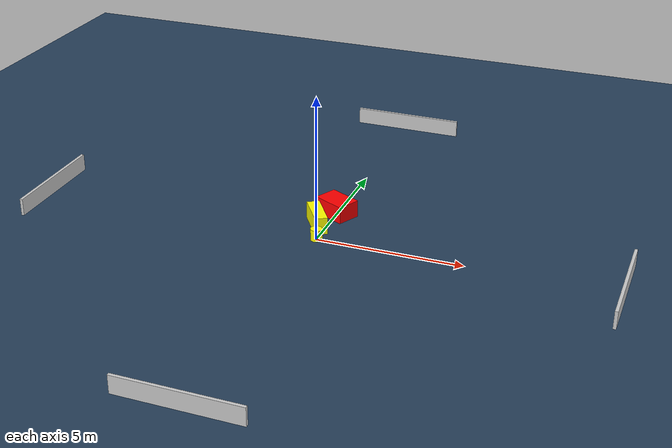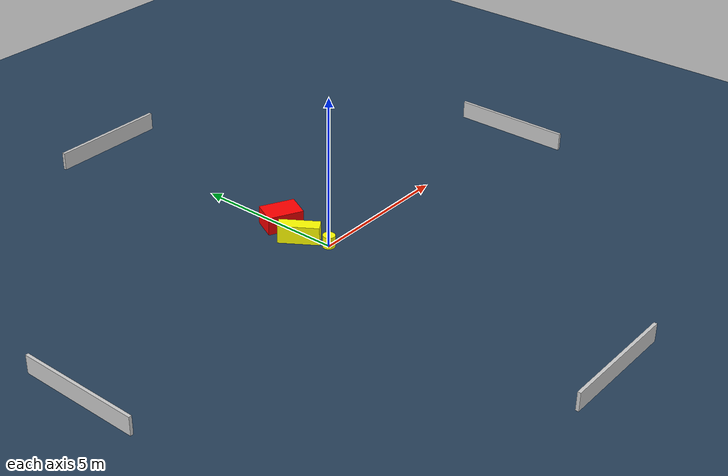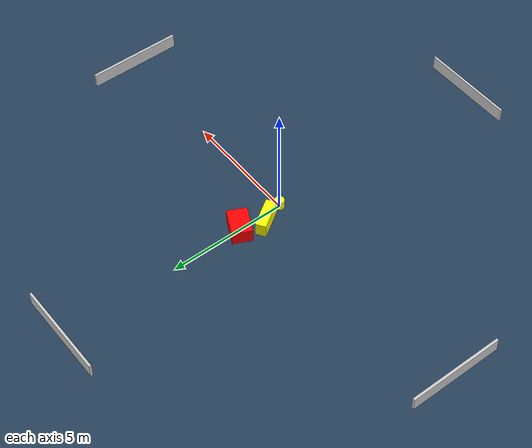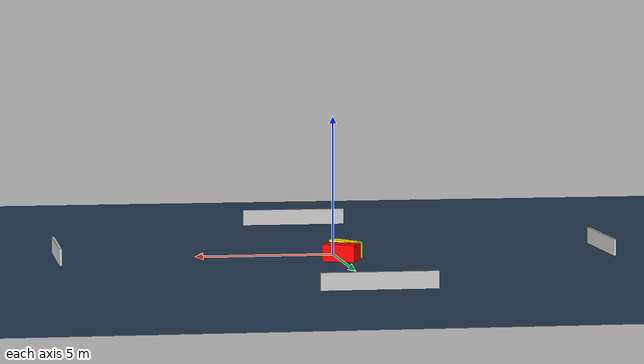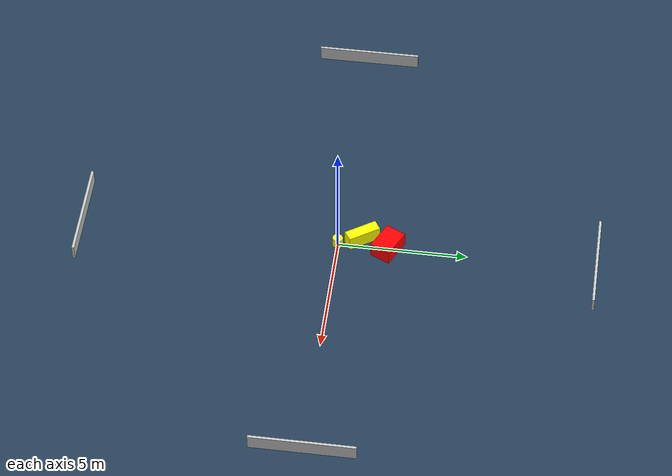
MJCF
<?xml version="1.0" ?>
<mujoco model="generated_environment">
  <option timestep="0.01" integrator="RK4" cone="elliptic"/>
  <default>
    <geom density="1"/>
  </default>
  <asset>
    <texture builtin="gradient" height="3072" name="skybox" rgb1="0.3 0.5 0.7" rgb2="0 0 0" type="skybox" width="512"/>
    <texture builtin="checker" height="300" name="groundplane" rgb1="0.2 0.3 0.4" rgb2="0.1 0.2 0.3" type="2d" width="300"/>
    <material name="groundplane" reflectance="0.2" texrepeat="5 5" texture="groundplane"/>
  </asset>
  <worldbody>
    <light dir="0 0 -1" directional="true" pos="0 0 1.5"/>
    <geom condim="3" friction="0.5 0.005 0.001" material="groundplane" name="floor" pos="0 0 0" size="0 0 0.05" type="plane"/>
    <body name="walls">
      <geom name="wall_1" condim="4" pos="-10.0 0.0 0.3" rgba="0.800000011920929 0.800000011920929 0.800000011920929 1.0" size="0.05 2.0 0.3" type="box"/>
      <geom name="wall_2" condim="4" pos="10.0 0.0 0.3" rgba="0.800000011920929 0.800000011920929 0.800000011920929 1.0" size="0.05 2.0 0.3" type="box"/>
      <geom name="wall_3" condim="4" pos="0.0 -10.0 0.3" rgba="0.800000011920929 0.800000011920929 0.800000011920929 1.0" size="2.0 0.05 0.3" type="box"/>
      <geom name="wall_4" condim="4" pos="0.0 10.0 0.3" rgba="0.800000011920929 0.800000011920929 0.800000011920929 1.0" size="2.0 0.05 0.3" type="box"/>
    </body>
    <body name="robot">
      <joint name="joint_x" type="slide" pos="0 0 0" axis="1 0 0"/>
      <joint name="joint_y" type="slide" pos="0 0 0" axis="0 1 0"/>
      <geom name="robot" type="cylinder" pos="0.0 0.0 0.2" size="0.2 0.2 0.0" mass="5.0" friction="1.0 0.005 0.0001" condim="4" rgba="1.0 1.0 0.0 1.0"/>
    </body>
    <body name="obstacle_1_movable">
      <geom name="obstacle_1_movable" condim="4" pos="-0.33266801041715355 0.9202919156970962 0.3" euler="0 0 33.43752073490514" friction="0.0 0.005 0.001" rgba="1.0 1.0 0.0 1.0" size="0.21867789437971283 0.6552695710881007 0.3" type="box" mass="0.1"/>
      <joint type="free"/>
    </body>
    <body name="obstacle_2_static">
      <geom name="obstacle_2_static" condim="4" pos="-0.005924484205906632 1.9491378401510255 0.3" euler="0 0 243.6108982275182" friction="0.0 0.005 0.001" rgba="1.0 0.0 0.0 1.0" size="0.4132174070281137 0.5892759024797849 0.3" type="box"/>
    </body>
  </worldbody>
  <actuator>
    <motor name="actuator_x" joint="joint_x" gear="1" ctrlrange="-1 1"/>
    <motor name="actuator_y" joint="joint_y" gear="1" ctrlrange="-1 1"/>
  </actuator>
</mujoco>
